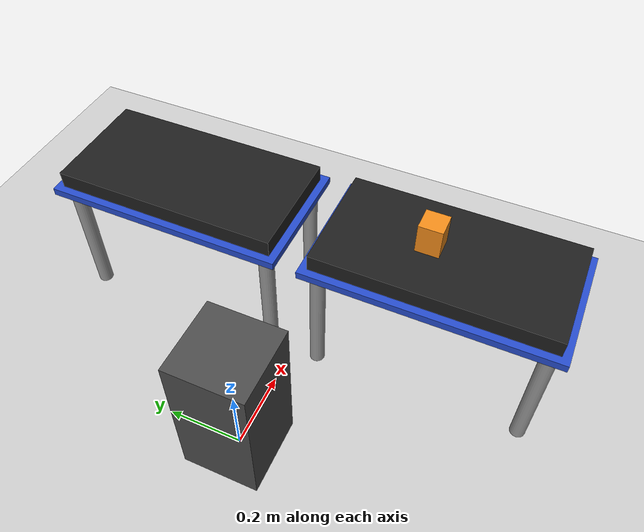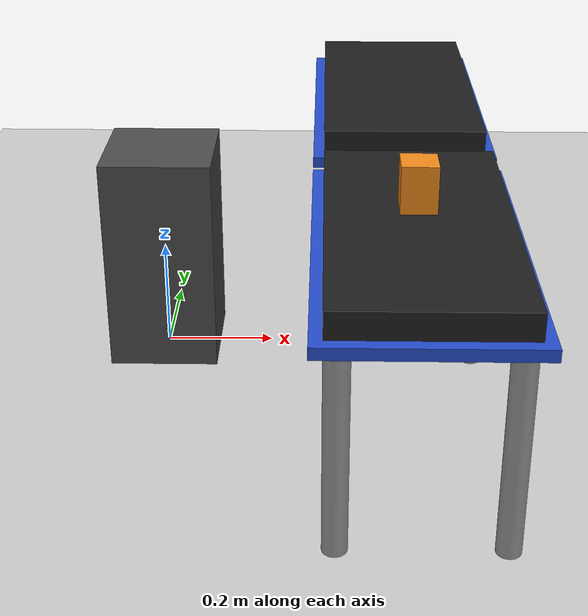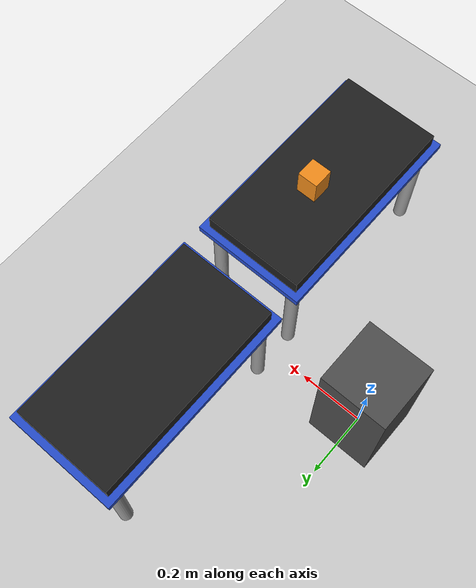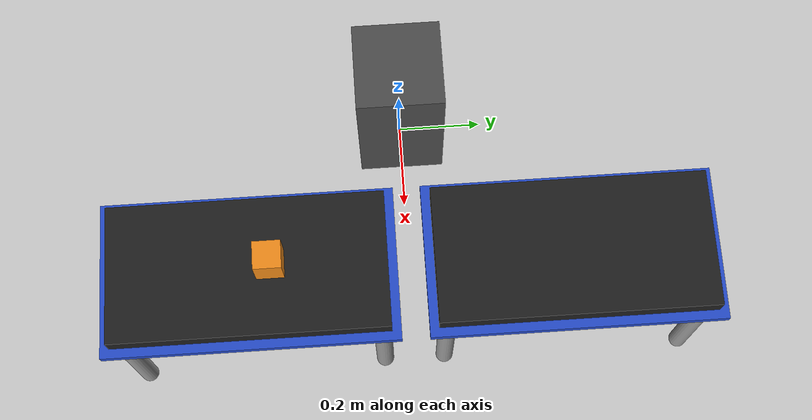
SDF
<?xml version="1.0" ?>
<sdf version="1.7">
  <world name="conveyor">

    <!-- kinematic attach/detach services: /link_attacher_node/attach, /link_attacher_node/detach -->
    <plugin name="ros_link_attacher_plugin" filename="libgazebo_ros_link_attacher.so"/>

    <light name="sun" type="directional">
      <cast_shadows>1</cast_shadows>
      <pose>0 0 10 0 0 0</pose>
      <diffuse>0.8 0.8 0.8 1</diffuse>
      <specular>0.2 0.2 0.2 1</specular>
      <direction>-0.5 0.1 -0.9</direction>
    </light>

    <model name="ground_plane">
      <static>1</static>
      <link name="ground_plane_link">
        <collision name="collision">
          <geometry><plane><normal>0 0 1</normal><size>100 100</size></plane></geometry>
          <surface><friction><ode><mu>100</mu><mu2>50</mu2></ode></friction></surface>
        </collision>
        <visual name="visual">
          <cast_shadows>0</cast_shadows>
          <geometry><plane><normal>0 0 1</normal><size>100 100</size></plane></geometry>
          <material><script><uri>file://media/materials/scripts/gazebo.material</uri><name>Gazebo/Grey</name></script></material>
        </visual>
      </link>
    </model>

    <physics type="ode">
      <max_step_size>0.001</max_step_size>
      <real_time_factor>1</real_time_factor>
      <real_time_update_rate>1000</real_time_update_rate>
    </physics>
    <gravity>0 0 -9.8</gravity>
    <scene>
      <ambient>0.4 0.4 0.4 1</ambient>
      <background>0.7 0.7 0.7 1</background>
      <shadows>1</shadows>
    </scene>

    <!-- Robot pedestal -->
    <model name="pedestal">
      <static>1</static>
      <pose>0 0 0.20 0 0 0</pose>
      <link name="link">
        <collision name="collision"><geometry><box><size>0.20 0.20 0.40</size></box></geometry></collision>
        <visual name="visual">
          <geometry><box><size>0.20 0.20 0.40</size></box></geometry>
          <material><script><uri>file://media/materials/scripts/gazebo.material</uri><name>Gazebo/DarkGrey</name></script></material>
        </visual>
      </link>
    </model>

    <!-- Input belt (left of the robot, y negative): belt body on four legs; static in this version -->
    <model name="input_belt">
      <static>1</static>
      <pose>0.45 -0.35 0 0 0 0</pose>
      <link name="link">
        <collision name="body"><pose>0 0 0.39 0 0 0</pose><geometry><box><size>0.30 0.60 0.05</size></box></geometry>
          <surface><friction><ode><mu>1.0</mu><mu2>1.0</mu2></ode></friction></surface></collision>
        <visual name="body_visual"><pose>0 0 0.39 0 0 0</pose><geometry><box><size>0.30 0.60 0.05</size></box></geometry>
          <material><script><uri>file://media/materials/scripts/gazebo.material</uri><name>Gazebo/Black</name></script></material></visual>
        <visual name="frame_visual"><pose>0 0 0.36 0 0 0</pose><geometry><box><size>0.34 0.64 0.02</size></box></geometry>
          <material><script><uri>file://media/materials/scripts/gazebo.material</uri><name>Gazebo/Blue</name></script></material></visual>
        <collision name="leg1"><pose> 0.13  0.28 0.175 0 0 0</pose><geometry><cylinder><radius>0.02</radius><length>0.35</length></cylinder></geometry></collision>
        <visual    name="leg1_v"><pose> 0.13  0.28 0.175 0 0 0</pose><geometry><cylinder><radius>0.02</radius><length>0.35</length></cylinder></geometry>
          <material><script><uri>file://media/materials/scripts/gazebo.material</uri><name>Gazebo/Grey</name></script></material></visual>
        <collision name="leg2"><pose> 0.13 -0.28 0.175 0 0 0</pose><geometry><cylinder><radius>0.02</radius><length>0.35</length></cylinder></geometry></collision>
        <visual    name="leg2_v"><pose> 0.13 -0.28 0.175 0 0 0</pose><geometry><cylinder><radius>0.02</radius><length>0.35</length></cylinder></geometry>
          <material><script><uri>file://media/materials/scripts/gazebo.material</uri><name>Gazebo/Grey</name></script></material></visual>
        <collision name="leg3"><pose>-0.13  0.28 0.175 0 0 0</pose><geometry><cylinder><radius>0.02</radius><length>0.35</length></cylinder></geometry></collision>
        <visual    name="leg3_v"><pose>-0.13  0.28 0.175 0 0 0</pose><geometry><cylinder><radius>0.02</radius><length>0.35</length></cylinder></geometry>
          <material><script><uri>file://media/materials/scripts/gazebo.material</uri><name>Gazebo/Grey</name></script></material></visual>
        <collision name="leg4"><pose>-0.13 -0.28 0.175 0 0 0</pose><geometry><cylinder><radius>0.02</radius><length>0.35</length></cylinder></geometry></collision>
        <visual    name="leg4_v"><pose>-0.13 -0.28 0.175 0 0 0</pose><geometry><cylinder><radius>0.02</radius><length>0.35</length></cylinder></geometry>
          <material><script><uri>file://media/materials/scripts/gazebo.material</uri><name>Gazebo/Grey</name></script></material></visual>
      </link>
    </model>

    <!-- Output belt (right of the robot, y positive) -->
    <model name="output_belt">
      <static>1</static>
      <pose>0.45 0.35 0 0 0 0</pose>
      <link name="link">
        <collision name="body"><pose>0 0 0.39 0 0 0</pose><geometry><box><size>0.30 0.60 0.05</size></box></geometry>
          <surface><friction><ode><mu>1.0</mu><mu2>1.0</mu2></ode></friction></surface></collision>
        <visual name="body_visual"><pose>0 0 0.39 0 0 0</pose><geometry><box><size>0.30 0.60 0.05</size></box></geometry>
          <material><script><uri>file://media/materials/scripts/gazebo.material</uri><name>Gazebo/Black</name></script></material></visual>
        <visual name="frame_visual"><pose>0 0 0.36 0 0 0</pose><geometry><box><size>0.34 0.64 0.02</size></box></geometry>
          <material><script><uri>file://media/materials/scripts/gazebo.material</uri><name>Gazebo/Blue</name></script></material></visual>
        <collision name="leg1"><pose> 0.13  0.28 0.175 0 0 0</pose><geometry><cylinder><radius>0.02</radius><length>0.35</length></cylinder></geometry></collision>
        <visual    name="leg1_v"><pose> 0.13  0.28 0.175 0 0 0</pose><geometry><cylinder><radius>0.02</radius><length>0.35</length></cylinder></geometry>
          <material><script><uri>file://media/materials/scripts/gazebo.material</uri><name>Gazebo/Grey</name></script></material></visual>
        <collision name="leg2"><pose> 0.13 -0.28 0.175 0 0 0</pose><geometry><cylinder><radius>0.02</radius><length>0.35</length></cylinder></geometry></collision>
        <visual    name="leg2_v"><pose> 0.13 -0.28 0.175 0 0 0</pose><geometry><cylinder><radius>0.02</radius><length>0.35</length></cylinder></geometry>
          <material><script><uri>file://media/materials/scripts/gazebo.material</uri><name>Gazebo/Grey</name></script></material></visual>
        <collision name="leg3"><pose>-0.13  0.28 0.175 0 0 0</pose><geometry><cylinder><radius>0.02</radius><length>0.35</length></cylinder></geometry></collision>
        <visual    name="leg3_v"><pose>-0.13  0.28 0.175 0 0 0</pose><geometry><cylinder><radius>0.02</radius><length>0.35</length></cylinder></geometry>
          <material><script><uri>file://media/materials/scripts/gazebo.material</uri><name>Gazebo/Grey</name></script></material></visual>
        <collision name="leg4"><pose>-0.13 -0.28 0.175 0 0 0</pose><geometry><cylinder><radius>0.02</radius><length>0.35</length></cylinder></geometry></collision>
        <visual    name="leg4_v"><pose>-0.13 -0.28 0.175 0 0 0</pose><geometry><cylinder><radius>0.02</radius><length>0.35</length></cylinder></geometry>
          <material><script><uri>file://media/materials/scripts/gazebo.material</uri><name>Gazebo/Grey</name></script></material></visual>
      </link>
    </model>

    <!-- Product: manipulation target. Dynamic box 0.06 x 0.06 x 0.08 m, m = 0.1 kg (solid-box inertia). -->
    <model name="product">
      <static>0</static>
      <pose>0.45 -0.30 0.455 0 0 0</pose>
      <link name="link">
        <inertial>
          <mass>0.1</mass>
          <inertia><ixx>8.3e-05</ixx><iyy>8.3e-05</iyy><izz>6.0e-05</izz><ixy>0</ixy><ixz>0</ixz><iyz>0</iyz></inertia>
        </inertial>
        <collision name="collision">
          <geometry><box><size>0.06 0.06 0.08</size></box></geometry>
          <surface><friction><ode><mu>1.0</mu><mu2>1.0</mu2></ode></friction>
            <contact><ode><kp>1e6</kp><kd>100</kd><min_depth>0.001</min_depth></ode></contact></surface>
        </collision>
        <visual name="visual">
          <geometry><box><size>0.06 0.06 0.08</size></box></geometry>
          <material><script><uri>file://media/materials/scripts/gazebo.material</uri><name>Gazebo/Orange</name></script></material>
        </visual>
      </link>
    </model>

    <gui fullscreen="0">
      <camera name="user_camera">
        <pose>2.2 -1.8 1.6 0 0.35 2.4</pose>
        <view_controller>orbit</view_controller>
      </camera>
    </gui>

  </world>
</sdf>
